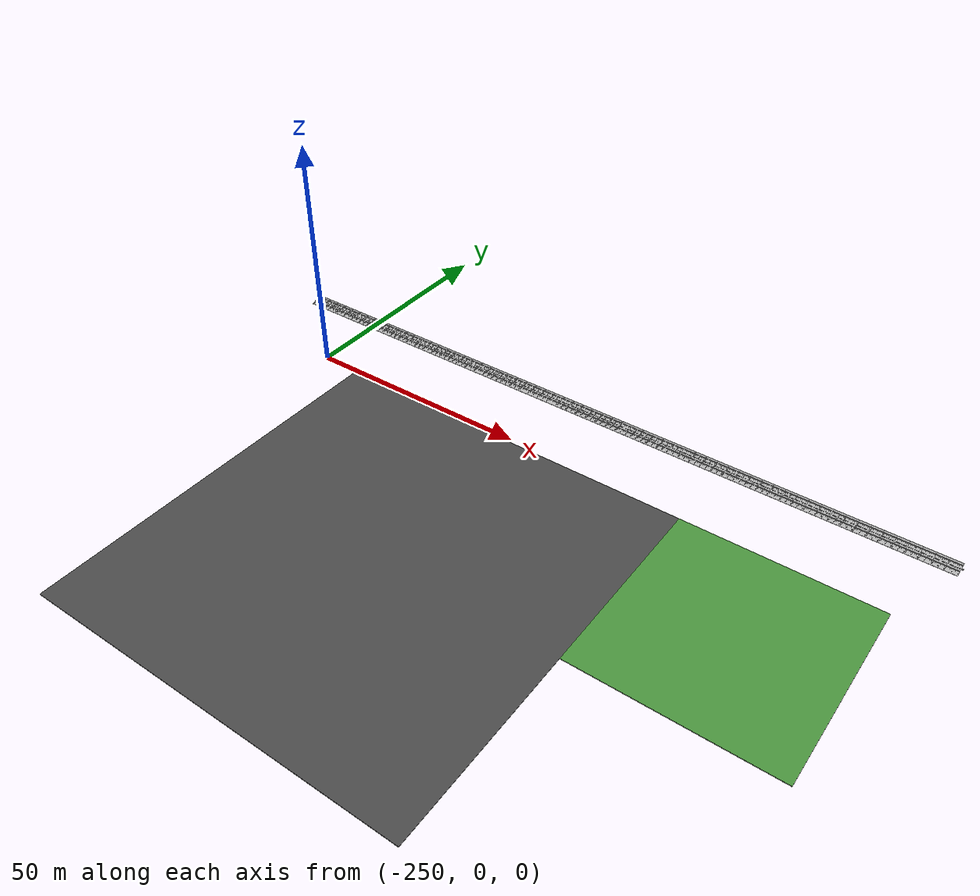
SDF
<sdf version="1.7">
 <world name="default">
  <model name="railway64_3">
   <model name="railway32">
    <model name="railway16">
     <model name="railway8">
      <model name="railway4">
       <model name="railway2">
        <model name="railway">
         <static>1</static>
         <link name="link">
          <visual name="visual"><geometry><mesh><uri>model://railway/meshes/model.dae</uri></mesh></geometry></visual>
         </link>
         <pose>1.19969 -6.9e-05 0 0 -0 0</pose>
        </model>
        <model name="railway_0">
         <static>1</static>
         <link name="link">
          <visual name="visual"><geometry><mesh><uri>model://railway/meshes/model.dae</uri></mesh></geometry></visual>
         </link>
         <pose>-1.1997 6.9e-05 0 0 -0 0</pose>
        </model>
        <static>0</static>
        <pose>-2.39934 4.6e-05 0 0 -0 0</pose>
       </model>
       <model name="railway2_0">
        <model name="railway">
         <static>1</static>
         <link name="link">
          <visual name="visual"><geometry><mesh><uri>model://railway/meshes/model.dae</uri></mesh></geometry></visual>
         </link>
         <pose>1.19969 -6.9e-05 0 0 -0 0</pose>
        </model>
        <model name="railway_0">
         <static>1</static>
         <link name="link">
          <visual name="visual"><geometry><mesh><uri>model://railway/meshes/model.dae</uri></mesh></geometry></visual>
         </link>
         <pose>-1.1997 6.9e-05 0 0 -0 0</pose>
        </model>
        <static>0</static>
        <pose>2.39934 -5.4e-05 0 0 -0 0</pose>
       </model>
       <static>0</static>
       <pose>4.79871 -0.000105 0 0 -0 0</pose>
      </model>
      <model name="railway4_0">
       <model name="railway2">
        <model name="railway">
         <static>1</static>
         <link name="link">
          <visual name="visual"><geometry><mesh><uri>model://railway/meshes/model.dae</uri></mesh></geometry></visual>
         </link>
         <pose>1.19969 -6.9e-05 0 0 -0 0</pose>
        </model>
        <model name="railway_0">
         <static>1</static>
         <link name="link">
          <visual name="visual"><geometry><mesh><uri>model://railway/meshes/model.dae</uri></mesh></geometry></visual>
         </link>
         <pose>-1.1997 6.9e-05 0 0 -0 0</pose>
        </model>
        <static>0</static>
        <pose>-2.39934 4.6e-05 0 0 -0 0</pose>
       </model>
       <model name="railway2_0">
        <model name="railway">
         <static>1</static>
         <link name="link">
          <visual name="visual"><geometry><mesh><uri>model://railway/meshes/model.dae</uri></mesh></geometry></visual>
         </link>
         <pose>1.19969 -6.9e-05 0 0 -0 0</pose>
        </model>
        <model name="railway_0">
         <static>1</static>
         <link name="link">
          <visual name="visual"><geometry><mesh><uri>model://railway/meshes/model.dae</uri></mesh></geometry></visual>
         </link>
         <pose>-1.1997 6.9e-05 0 0 -0 0</pose>
        </model>
        <static>0</static>
        <pose>2.39934 -5.4e-05 0 0 -0 0</pose>
       </model>
       <static>0</static>
       <pose>-4.79871 9.6e-05 0 0 -0 0</pose>
      </model>
      <static>0</static>
      <pose>9.5973 -0.000147 0 0 -0 0</pose>
     </model>
     <model name="railway8_0">
      <model name="railway4">
       <model name="railway2">
        <model name="railway">
         <static>1</static>
         <link name="link">
          <visual name="visual"><geometry><mesh><uri>model://railway/meshes/model.dae</uri></mesh></geometry></visual>
         </link>
         <pose>1.19969 -6.9e-05 0 0 -0 0</pose>
        </model>
        <model name="railway_0">
         <static>1</static>
         <link name="link">
          <visual name="visual"><geometry><mesh><uri>model://railway/meshes/model.dae</uri></mesh></geometry></visual>
         </link>
         <pose>-1.1997 6.9e-05 0 0 -0 0</pose>
        </model>
        <static>0</static>
        <pose>-2.39934 4.6e-05 0 0 -0 0</pose>
       </model>
       <model name="railway2_0">
        <model name="railway">
         <static>1</static>
         <link name="link">
          <visual name="visual"><geometry><mesh><uri>model://railway/meshes/model.dae</uri></mesh></geometry></visual>
         </link>
         <pose>1.19969 -6.9e-05 0 0 -0 0</pose>
        </model>
        <model name="railway_0">
         <static>1</static>
         <link name="link">
          <visual name="visual"><geometry><mesh><uri>model://railway/meshes/model.dae</uri></mesh></geometry></visual>
         </link>
         <pose>-1.1997 6.9e-05 0 0 -0 0</pose>
        </model>
        <static>0</static>
        <pose>2.39934 -5.4e-05 0 0 -0 0</pose>
       </model>
       <static>0</static>
       <pose>4.79871 -0.000105 0 0 -0 0</pose>
      </model>
      <model name="railway4_0">
       <model name="railway2">
        <model name="railway">
         <static>1</static>
         <link name="link">
          <visual name="visual"><geometry><mesh><uri>model://railway/meshes/model.dae</uri></mesh></geometry></visual>
         </link>
         <pose>1.19969 -6.9e-05 0 0 -0 0</pose>
        </model>
        <model name="railway_0">
         <static>1</static>
         <link name="link">
          <visual name="visual"><geometry><mesh><uri>model://railway/meshes/model.dae</uri></mesh></geometry></visual>
         </link>
         <pose>-1.1997 6.9e-05 0 0 -0 0</pose>
        </model>
        <static>0</static>
        <pose>-2.39934 4.6e-05 0 0 -0 0</pose>
       </model>
       <model name="railway2_0">
        <model name="railway">
         <static>1</static>
         <link name="link">
          <visual name="visual"><geometry><mesh><uri>model://railway/meshes/model.dae</uri></mesh></geometry></visual>
         </link>
         <pose>1.19969 -6.9e-05 0 0 -0 0</pose>
        </model>
        <model name="railway_0">
         <static>1</static>
         <link name="link">
          <visual name="visual"><geometry><mesh><uri>model://railway/meshes/model.dae</uri></mesh></geometry></visual>
         </link>
         <pose>-1.1997 6.9e-05 0 0 -0 0</pose>
        </model>
        <static>0</static>
        <pose>2.39934 -5.4e-05 0 0 -0 0</pose>
       </model>
       <static>0</static>
       <pose>-4.79871 9.6e-05 0 0 -0 0</pose>
      </model>
      <static>0</static>
      <pose>-9.59731 0.000145 0 0 -0 0</pose>
     </model>
     <static>0</static>
     <pose>19.1948 -0.00044 0 0 -0 0</pose>
    </model>
    <model name="railway16_0">
     <model name="railway8">
      <model name="railway4">
       <model name="railway2">
        <model name="railway">
         <static>1</static>
         <link name="link">
          <visual name="visual"><geometry><mesh><uri>model://railway/meshes/model.dae</uri></mesh></geometry></visual>
         </link>
         <pose>1.19969 -6.9e-05 0 0 -0 0</pose>
        </model>
        <model name="railway_0">
         <static>1</static>
         <link name="link">
          <visual name="visual"><geometry><mesh><uri>model://railway/meshes/model.dae</uri></mesh></geometry></visual>
         </link>
         <pose>-1.1997 6.9e-05 0 0 -0 0</pose>
        </model>
        <static>0</static>
        <pose>-2.39934 4.6e-05 0 0 -0 0</pose>
       </model>
       <model name="railway2_0">
        <model name="railway">
         <static>1</static>
         <link name="link">
          <visual name="visual"><geometry><mesh><uri>model://railway/meshes/model.dae</uri></mesh></geometry></visual>
         </link>
         <pose>1.19969 -6.9e-05 0 0 -0 0</pose>
        </model>
        <model name="railway_0">
         <static>1</static>
         <link name="link">
          <visual name="visual"><geometry><mesh><uri>model://railway/meshes/model.dae</uri></mesh></geometry></visual>
         </link>
         <pose>-1.1997 6.9e-05 0 0 -0 0</pose>
        </model>
        <static>0</static>
        <pose>2.39934 -5.4e-05 0 0 -0 0</pose>
       </model>
       <static>0</static>
       <pose>4.79871 -0.000105 0 0 -0 0</pose>
      </model>
      <model name="railway4_0">
       <model name="railway2">
        <model name="railway">
         <static>1</static>
         <link name="link">
          <visual name="visual"><geometry><mesh><uri>model://railway/meshes/model.dae</uri></mesh></geometry></visual>
         </link>
         <pose>1.19969 -6.9e-05 0 0 -0 0</pose>
        </model>
        <model name="railway_0">
         <static>1</static>
         <link name="link">
          <visual name="visual"><geometry><mesh><uri>model://railway/meshes/model.dae</uri></mesh></geometry></visual>
         </link>
         <pose>-1.1997 6.9e-05 0 0 -0 0</pose>
        </model>
        <static>0</static>
        <pose>-2.39934 4.6e-05 0 0 -0 0</pose>
       </model>
       <model name="railway2_0">
        <model name="railway">
         <static>1</static>
         <link name="link">
          <visual name="visual"><geometry><mesh><uri>model://railway/meshes/model.dae</uri></mesh></geometry></visual>
         </link>
         <pose>1.19969 -6.9e-05 0 0 -0 0</pose>
        </model>
        <model name="railway_0">
         <static>1</static>
         <link name="link">
          <visual name="visual"><geometry><mesh><uri>model://railway/meshes/model.dae</uri></mesh></geometry></visual>
         </link>
         <pose>-1.1997 6.9e-05 0 0 -0 0</pose>
        </model>
        <static>0</static>
        <pose>2.39934 -5.4e-05 0 0 -0 0</pose>
       </model>
       <static>0</static>
       <pose>-4.79871 9.6e-05 0 0 -0 0</pose>
      </model>
      <static>0</static>
      <pose>9.5973 -0.000147 0 0 -0 0</pose>
     </model>
     <model name="railway8_0">
      <model name="railway4">
       <model name="railway2">
        <model name="railway">
         <static>1</static>
         <link name="link">
          <visual name="visual"><geometry><mesh><uri>model://railway/meshes/model.dae</uri></mesh></geometry></visual>
         </link>
         <pose>1.19969 -6.9e-05 0 0 -0 0</pose>
        </model>
        <model name="railway_0">
         <static>1</static>
         <link name="link">
          <visual name="visual"><geometry><mesh><uri>model://railway/meshes/model.dae</uri></mesh></geometry></visual>
         </link>
         <pose>-1.1997 6.9e-05 0 0 -0 0</pose>
        </model>
        <static>0</static>
        <pose>-2.39934 4.6e-05 0 0 -0 0</pose>
       </model>
       <model name="railway2_0">
        <model name="railway">
         <static>1</static>
         <link name="link">
          <visual name="visual"><geometry><mesh><uri>model://railway/meshes/model.dae</uri></mesh></geometry></visual>
         </link>
         <pose>1.19969 -6.9e-05 0 0 -0 0</pose>
        </model>
        <model name="railway_0">
         <static>1</static>
         <link name="link">
          <visual name="visual"><geometry><mesh><uri>model://railway/meshes/model.dae</uri></mesh></geometry></visual>
         </link>
         <pose>-1.1997 6.9e-05 0 0 -0 0</pose>
        </model>
        <static>0</static>
        <pose>2.39934 -5.4e-05 0 0 -0 0</pose>
       </model>
       <static>0</static>
       <pose>4.79871 -0.000105 0 0 -0 0</pose>
      </model>
      <model name="railway4_0">
       <model name="railway2">
        <model name="railway">
         <static>1</static>
         <link name="link">
          <visual name="visual"><geometry><mesh><uri>model://railway/meshes/model.dae</uri></mesh></geometry></visual>
         </link>
         <pose>1.19969 -6.9e-05 0 0 -0 0</pose>
        </model>
        <model name="railway_0">
         <static>1</static>
         <link name="link">
          <visual name="visual"><geometry><mesh><uri>model://railway/meshes/model.dae</uri></mesh></geometry></visual>
         </link>
         <pose>-1.1997 6.9e-05 0 0 -0 0</pose>
        </model>
        <static>0</static>
        <pose>-2.39934 4.6e-05 0 0 -0 0</pose>
       </model>
       <model name="railway2_0">
        <model name="railway">
         <static>1</static>
         <link name="link">
          <visual name="visual"><geometry><mesh><uri>model://railway/meshes/model.dae</uri></mesh></geometry></visual>
         </link>
         <pose>1.19969 -6.9e-05 0 0 -0 0</pose>
        </model>
        <model name="railway_0">
         <static>1</static>
         <link name="link">
          <visual name="visual"><geometry><mesh><uri>model://railway/meshes/model.dae</uri></mesh></geometry></visual>
         </link>
         <pose>-1.1997 6.9e-05 0 0 -0 0</pose>
        </model>
        <static>0</static>
        <pose>2.39934 -5.4e-05 0 0 -0 0</pose>
       </model>
       <static>0</static>
       <pose>-4.79871 9.6e-05 0 0 -0 0</pose>
      </model>
      <static>0</static>
      <pose>-9.59731 0.000145 0 0 -0 0</pose>
     </model>
     <static>0</static>
     <pose>-19.1948 0.000444 0 0 -0 0</pose>
    </model>
    <static>0</static>
    <pose>38.3896 -0.000844 0 0 -0 0</pose>
   </model>
   <model name="railway32_0">
    <model name="railway16">
     <model name="railway8">
      <model name="railway4">
       <model name="railway2">
        <model name="railway">
         <static>1</static>
         <link name="link">
          <visual name="visual"><geometry><mesh><uri>model://railway/meshes/model.dae</uri></mesh></geometry></visual>
         </link>
         <pose>1.19969 -6.9e-05 0 0 -0 0</pose>
        </model>
        <model name="railway_0">
         <static>1</static>
         <link name="link">
          <visual name="visual"><geometry><mesh><uri>model://railway/meshes/model.dae</uri></mesh></geometry></visual>
         </link>
         <pose>-1.1997 6.9e-05 0 0 -0 0</pose>
        </model>
        <static>0</static>
        <pose>-2.39934 4.6e-05 0 0 -0 0</pose>
       </model>
       <model name="railway2_0">
        <model name="railway">
         <static>1</static>
         <link name="link">
          <visual name="visual"><geometry><mesh><uri>model://railway/meshes/model.dae</uri></mesh></geometry></visual>
         </link>
         <pose>1.19969 -6.9e-05 0 0 -0 0</pose>
        </model>
        <model name="railway_0">
         <static>1</static>
         <link name="link">
          <visual name="visual"><geometry><mesh><uri>model://railway/meshes/model.dae</uri></mesh></geometry></visual>
         </link>
         <pose>-1.1997 6.9e-05 0 0 -0 0</pose>
        </model>
        <static>0</static>
        <pose>2.39934 -5.4e-05 0 0 -0 0</pose>
       </model>
       <static>0</static>
       <pose>4.79871 -0.000105 0 0 -0 0</pose>
      </model>
      <model name="railway4_0">
       <model name="railway2">
        <model name="railway">
         <static>1</static>
         <link name="link">
          <visual name="visual"><geometry><mesh><uri>model://railway/meshes/model.dae</uri></mesh></geometry></visual>
         </link>
         <pose>1.19969 -6.9e-05 0 0 -0 0</pose>
        </model>
        <model name="railway_0">
         <static>1</static>
         <link name="link">
          <visual name="visual"><geometry><mesh><uri>model://railway/meshes/model.dae</uri></mesh></geometry></visual>
         </link>
         <pose>-1.1997 6.9e-05 0 0 -0 0</pose>
        </model>
        <static>0</static>
        <pose>-2.39934 4.6e-05 0 0 -0 0</pose>
       </model>
       <model name="railway2_0">
        <model name="railway">
         <static>1</static>
         <link name="link">
          <visual name="visual"><geometry><mesh><uri>model://railway/meshes/model.dae</uri></mesh></geometry></visual>
         </link>
         <pose>1.19969 -6.9e-05 0 0 -0 0</pose>
        </model>
        <model name="railway_0">
         <static>1</static>
         <link name="link">
          <visual name="visual"><geometry><mesh><uri>model://railway/meshes/model.dae</uri></mesh></geometry></visual>
         </link>
         <pose>-1.1997 6.9e-05 0 0 -0 0</pose>
        </model>
        <static>0</static>
        <pose>2.39934 -5.4e-05 0 0 -0 0</pose>
       </model>
       <static>0</static>
       <pose>-4.79871 9.6e-05 0 0 -0 0</pose>
      </model>
      <static>0</static>
      <pose>9.5973 -0.000147 0 0 -0 0</pose>
     </model>
     <model name="railway8_0">
      <model name="railway4">
       <model name="railway2">
        <model name="railway">
         <static>1</static>
         <link name="link">
          <visual name="visual"><geometry><mesh><uri>model://railway/meshes/model.dae</uri></mesh></geometry></visual>
         </link>
         <pose>1.19969 -6.9e-05 0 0 -0 0</pose>
        </model>
        <model name="railway_0">
         <static>1</static>
         <link name="link">
          <visual name="visual"><geometry><mesh><uri>model://railway/meshes/model.dae</uri></mesh></geometry></visual>
         </link>
         <pose>-1.1997 6.9e-05 0 0 -0 0</pose>
        </model>
        <static>0</static>
        <pose>-2.39934 4.6e-05 0 0 -0 0</pose>
       </model>
       <model name="railway2_0">
        <model name="railway">
         <static>1</static>
         <link name="link">
          <visual name="visual"><geometry><mesh><uri>model://railway/meshes/model.dae</uri></mesh></geometry></visual>
         </link>
         <pose>1.19969 -6.9e-05 0 0 -0 0</pose>
        </model>
        <model name="railway_0">
         <static>1</static>
         <link name="link">
          <visual name="visual"><geometry><mesh><uri>model://railway/meshes/model.dae</uri></mesh></geometry></visual>
         </link>
         <pose>-1.1997 6.9e-05 0 0 -0 0</pose>
        </model>
        <static>0</static>
        <pose>2.39934 -5.4e-05 0 0 -0 0</pose>
       </model>
       <static>0</static>
       <pose>4.79871 -0.000105 0 0 -0 0</pose>
      </model>
      <model name="railway4_0">
       <model name="railway2">
        <model name="railway">
         <static>1</static>
         <link name="link">
          <visual name="visual"><geometry><mesh><uri>model://railway/meshes/model.dae</uri></mesh></geometry></visual>
         </link>
         <pose>1.19969 -6.9e-05 0 0 -0 0</pose>
        </model>
        <model name="railway_0">
         <static>1</static>
         <link name="link">
          <visual name="visual"><geometry><mesh><uri>model://railway/meshes/model.dae</uri></mesh></geometry></visual>
         </link>
         <pose>-1.1997 6.9e-05 0 0 -0 0</pose>
        </model>
        <static>0</static>
        <pose>-2.39934 4.6e-05 0 0 -0 0</pose>
       </model>
       <model name="railway2_0">
        <model name="railway">
         <static>1</static>
         <link name="link">
          <visual name="visual"><geometry><mesh><uri>model://railway/meshes/model.dae</uri></mesh></geometry></visual>
         </link>
         <pose>1.19969 -6.9e-05 0 0 -0 0</pose>
        </model>
        <model name="railway_0">
         <static>1</static>
         <link name="link">
          <visual name="visual"><geometry><mesh><uri>model://railway/meshes/model.dae</uri></mesh></geometry></visual>
         </link>
         <pose>-1.1997 6.9e-05 0 0 -0 0</pose>
        </model>
        <static>0</static>
        <pose>2.39934 -5.4e-05 0 0 -0 0</pose>
       </model>
       <static>0</static>
       <pose>-4.79871 9.6e-05 0 0 -0 0</pose>
      </model>
      <static>0</static>
      <pose>-9.59731 0.000145 0 0 -0 0</pose>
     </model>
     <static>0</static>
     <pose>19.1948 -0.00044 0 0 -0 0</pose>
    </model>
    <model name="railway16_0">
     <model name="railway8">
      <model name="railway4">
       <model name="railway2">
        <model name="railway">
         <static>1</static>
         <link name="link">
          <visual name="visual"><geometry><mesh><uri>model://railway/meshes/model.dae</uri></mesh></geometry></visual>
         </link>
         <pose>1.19969 -6.9e-05 0 0 -0 0</pose>
        </model>
        <model name="railway_0">
         <static>1</static>
         <link name="link">
          <visual name="visual"><geometry><mesh><uri>model://railway/meshes/model.dae</uri></mesh></geometry></visual>
         </link>
         <pose>-1.1997 6.9e-05 0 0 -0 0</pose>
        </model>
        <static>0</static>
        <pose>-2.39934 4.6e-05 0 0 -0 0</pose>
       </model>
       <model name="railway2_0">
        <model name="railway">
         <static>1</static>
         <link name="link">
          <visual name="visual"><geometry><mesh><uri>model://railway/meshes/model.dae</uri></mesh></geometry></visual>
         </link>
         <pose>1.19969 -6.9e-05 0 0 -0 0</pose>
        </model>
        <model name="railway_0">
         <static>1</static>
         <link name="link">
          <visual name="visual"><geometry><mesh><uri>model://railway/meshes/model.dae</uri></mesh></geometry></visual>
         </link>
         <pose>-1.1997 6.9e-05 0 0 -0 0</pose>
        </model>
        <static>0</static>
        <pose>2.39934 -5.4e-05 0 0 -0 0</pose>
       </model>
       <static>0</static>
       <pose>4.79871 -0.000105 0 0 -0 0</pose>
      </model>
      <model name="railway4_0">
       <model name="railway2">
        <model name="railway">
         <static>1</static>
         <link name="link">
          <visual name="visual"><geometry><mesh><uri>model://railway/meshes/model.dae</uri></mesh></geometry></visual>
         </link>
         <pose>1.19969 -6.9e-05 0 0 -0 0</pose>
        </model>
        <model name="railway_0">
         <static>1</static>
         <link name="link">
          <visual name="visual"><geometry><mesh><uri>model://railway/meshes/model.dae</uri></mesh></geometry></visual>
         </link>
         <pose>-1.1997 6.9e-05 0 0 -0 0</pose>
        </model>
        <static>0</static>
        <pose>-2.39934 4.6e-05 0 0 -0 0</pose>
       </model>
       <model name="railway2_0">
        <model name="railway">
         <static>1</static>
         <link name="link">
          <visual name="visual"><geometry><mesh><uri>model://railway/meshes/model.dae</uri></mesh></geometry></visual>
         </link>
         <pose>1.19969 -6.9e-05 0 0 -0 0</pose>
        </model>
        <model name="railway_0">
         <static>1</static>
         <link name="link">
          <visual name="visual"><geometry><mesh><uri>model://railway/meshes/model.dae</uri></mesh></geometry></visual>
         </link>
         <pose>-1.1997 6.9e-05 0 0 -0 0</pose>
        </model>
        <static>0</static>
        <pose>2.39934 -5.4e-05 0 0 -0 0</pose>
       </model>
       <static>0</static>
       <pose>-4.79871 9.6e-05 0 0 -0 0</pose>
      </model>
      <static>0</static>
      <pose>9.5973 -0.000147 0 0 -0 0</pose>
     </model>
     <model name="railway8_0">
      <model name="railway4">
       <model name="railway2">
        <model name="railway">
         <static>1</static>
         <link name="link">
          <visual name="visual"><geometry><mesh><uri>model://railway/meshes/model.dae</uri></mesh></geometry></visual>
         </link>
         <pose>1.19969 -6.9e-05 0 0 -0 0</pose>
        </model>
        <model name="railway_0">
         <static>1</static>
         <link name="link">
          <visual name="visual"><geometry><mesh><uri>model://railway/meshes/model.dae</uri></mesh></geometry></visual>
         </link>
         <pose>-1.1997 6.9e-05 0 0 -0 0</pose>
        </model>
        <static>0</static>
        <pose>-2.39934 4.6e-05 0 0 -0 0</pose>
       </model>
       <model name="railway2_0">
        <model name="railway">
         <static>1</static>
         <link name="link">
          <visual name="visual"><geometry><mesh><uri>model://railway/meshes/model.dae</uri></mesh></geometry></visual>
         </link>
         <pose>1.19969 -6.9e-05 0 0 -0 0</pose>
        </model>
        <model name="railway_0">
         <static>1</static>
         <link name="link">
          <visual name="visual"><geometry><mesh><uri>model://railway/meshes/model.dae</uri></mesh></geometry></visual>
         </link>
         <pose>-1.1997 6.9e-05 0 0 -0 0</pose>
        </model>
        <static>0</static>
        <pose>2.39934 -5.4e-05 0 0 -0 0</pose>
       </model>
       <static>0</static>
       <pose>4.79871 -0.000105 0 0 -0 0</pose>
      </model>
      <model name="railway4_0">
       <model name="railway2">
        <model name="railway">
         <static>1</static>
         <link name="link">
          <visual name="visual"><geometry><mesh><uri>model://railway/meshes/model.dae</uri></mesh></geometry></visual>
         </link>
         <pose>1.19969 -6.9e-05 0 0 -0 0</pose>
        </model>
        <model name="railway_0">
         <static>1</static>
         <link name="link">
          <visual name="visual"><geometry><mesh><uri>model://railway/meshes/model.dae</uri></mesh></geometry></visual>
         </link>
         <pose>-1.1997 6.9e-05 0 0 -0 0</pose>
        </model>
        <static>0</static>
        <pose>-2.39934 4.6e-05 0 0 -0 0</pose>
       </model>
       <model name="railway2_0">
        <model name="railway">
         <static>1</static>
         <link name="link">
          <visual name="visual"><geometry><mesh><uri>model://railway/meshes/model.dae</uri></mesh></geometry></visual>
         </link>
         <pose>1.19969 -6.9e-05 0 0 -0 0</pose>
        </model>
        <model name="railway_0">
         <static>1</static>
         <link name="link">
          <visual name="visual"><geometry><mesh><uri>model://railway/meshes/model.dae</uri></mesh></geometry></visual>
         </link>
         <pose>-1.1997 6.9e-05 0 0 -0 0</pose>
        </model>
        <static>0</static>
        <pose>2.39934 -5.4e-05 0 0 -0 0</pose>
       </model>
       <static>0</static>
       <pose>-4.79871 9.6e-05 0 0 -0 0</pose>
      </model>
      <static>0</static>
      <pose>-9.59731 0.000145 0 0 -0 0</pose>
     </model>
     <static>0</static>
     <pose>-19.1948 0.000444 0 0 -0 0</pose>
    </model>
    <static>0</static>
    <pose>-38.3896 0.000845 0 0 -0 0</pose>
   </model>
   <static>0</static>
   <pose>-192.991 16.4191 0 0 -0 0</pose>
  </model>
  <model name="asphalt_plane_40x40">
   <pose>-201.419 -40.7533 -0.05 0 -0 0</pose>
   <static>1</static>
   <link name="link">
    <collision name="collision"><geometry><box><size>80 80 0.1</size></box></geometry></collision>
    <visual name="visual">
     <cast_shadows>0</cast_shadows>
     <geometry><box><size>80 80 0.1</size></box></geometry>
     <material>
      <script>
       <uri>model://asphalt_plane_40x40/materials/scripts</uri>
       <uri>model://asphalt_plane_40x40/materials/textures</uri>
       <name>vrc/asphalt</name>
      </script>
     </material>
    </visual>
   </link>
  </model>
  <model name="grass_plane_40x40_13">
   <pose>-141.422 -20.7524 -0.05 0 -0 0</pose>
   <static>1</static>
   <link name="link">
    <collision name="collision"><geometry><box><size>40 40 0.1</size></box></geometry></collision>
    <visual name="grass">
     <cast_shadows>0</cast_shadows>
     <geometry><box><size>40 40 0.1</size></box></geometry>
     <material>
      <script><uri>file://media/materials/scripts/gazebo.material</uri><name>Gazebo/Grass</name></script>
     </material>
    </visual>
   </link>
  </model>
 </world>
</sdf>
